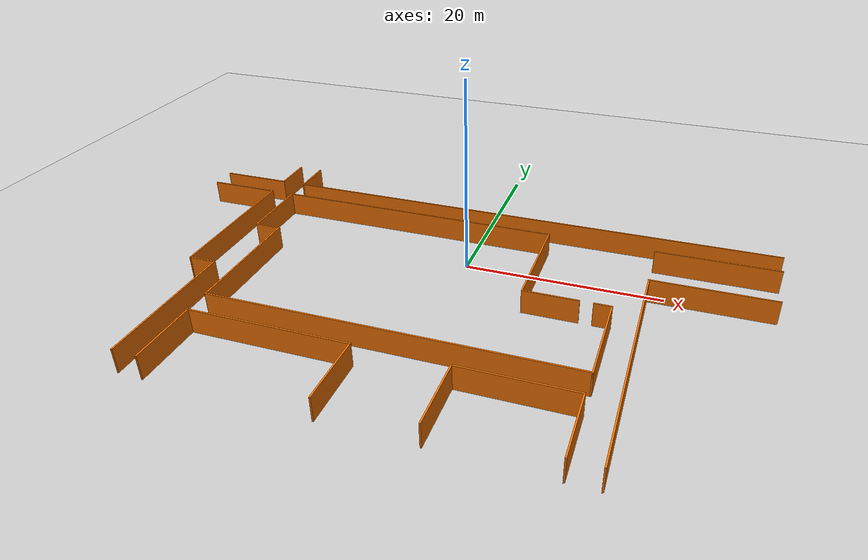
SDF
<sdf version="1.7">
 <world name="default">
  <light name="sun" type="directional">
   <pose>0 0 10 0 -0 0</pose>
   <diffuse>0.8 0.8 0.8 1</diffuse>
   <specular>0.2 0.2 0.2 1</specular>
   <attenuation>
    <range>1000</range>
    <constant>0.9</constant>
    <linear>0.01</linear>
    <quadratic>0.001</quadratic>
   </attenuation>
   <direction>-0.5 0.1 -0.9</direction>
   <spot><inner_angle>0</inner_angle><outer_angle>0</outer_angle><falloff>0</falloff></spot>
  </light>
  <model name="ground_plane">
   <static>1</static>
   <link name="link">
    <collision name="collision">
     <geometry><plane><normal>0 0 1</normal><size>100 100</size></plane></geometry>
     <surface><friction><ode><mu>100</mu><mu2>50</mu2></ode></friction></surface>
    </collision>
    <visual name="visual">
     <cast_shadows>0</cast_shadows>
     <geometry><plane><normal>0 0 1</normal><size>100 100</size></plane></geometry>
     <material>
      <script><uri>file://media/materials/scripts/gazebo.material</uri><name>Gazebo/Grey</name></script>
     </material>
    </visual>
   </link>
  </model>
  <gravity>0 0 -9.8</gravity>
  <magnetic_field>6e-06 2.3e-05 -4.2e-05</magnetic_field>
  <atmosphere type="adiabatic"/>
  <physics type="ode">
   <max_step_size>0.001</max_step_size>
   <real_time_factor>1</real_time_factor>
   <real_time_update_rate>1000</real_time_update_rate>
  </physics>
  <scene><ambient>0.4 0.4 0.4 1</ambient><background>0.7 0.7 0.7 1</background><shadows>1</shadows></scene>
  <audio><device>default</device></audio>
  <spherical_coordinates>
   <surface_model>EARTH_WGS84</surface_model>
   <latitude_deg>0</latitude_deg>
   <longitude_deg>0</longitude_deg>
   <elevation>0</elevation>
   <heading_deg>0</heading_deg>
  </spherical_coordinates>
  <model name="shiyanlou">
   <pose>-1.0655 -6.68339 0 0 -0 0</pose>
   <link name="Wall_110">
    <collision name="Wall_110_Collision">
     <geometry><box><size>12.25 0.15 2.5</size></box></geometry>
     <pose>0 0 1.25 0 -0 0</pose>
    </collision>
    <visual name="Wall_110_Visual">
     <pose>0 0 1.25 0 -0 0</pose>
     <geometry><box><size>12.25 0.15 2.5</size></box></geometry>
     <material>
      <script><uri>file://media/materials/scripts/gazebo.material</uri><name>Gazebo/Grey</name></script>
      <ambient>0.996078 0.47451 0.0196078 1</ambient>
     </material>
     <meta><layer>0</layer></meta>
    </visual>
    <pose>25.5025 11.4924 0 0 -0 0</pose>
   </link>
   <link name="Wall_116">
    <collision name="Wall_116_Collision">
     <geometry><box><size>24.5 0.15 2.5</size></box></geometry>
     <pose>0 0 1.25 0 -0 0</pose>
    </collision>
    <visual name="Wall_116_Visual">
     <pose>0 0 1.25 0 -0 0</pose>
     <geometry><box><size>24.5 0.15 2.5</size></box></geometry>
     <material>
      <script><uri>file://media/materials/scripts/gazebo.material</uri><name>Gazebo/Grey</name></script>
      <ambient>0.996078 0.47451 0.0196078 1</ambient>
     </material>
     <meta><layer>0</layer></meta>
    </visual>
    <pose>19.4525 -6.11061 0 0 -0 1.5708</pose>
   </link>
   <link name="Wall_118">
    <collision name="Wall_118_Collision">
     <geometry><box><size>12 0.15 2.5</size></box></geometry>
     <pose>0 0 1.25 0 -0 0</pose>
    </collision>
    <visual name="Wall_118_Visual">
     <pose>0 0 1.25 0 -0 0</pose>
     <geometry><box><size>12 0.15 2.5</size></box></geometry>
     <material>
      <script><uri>file://media/materials/scripts/gazebo.material</uri><name>Gazebo/Grey</name></script>
      <ambient>0.996078 0.47451 0.0196078 1</ambient>
     </material>
     <meta><layer>0</layer></meta>
    </visual>
    <pose>25.3775 6.06439 0 0 -0 0</pose>
   </link>
   <link name="Wall_122">
    <collision name="Wall_122_Collision">
     <geometry><box><size>7 0.15 2.5</size></box></geometry>
     <pose>0 0 1.25 0 -0 0</pose>
    </collision>
    <visual name="Wall_122_Visual">
     <pose>0 0 1.25 0 -0 0</pose>
     <geometry><box><size>7 0.15 2.5</size></box></geometry>
     <material>
      <script><uri>file://media/materials/scripts/gazebo.material</uri><name>Gazebo/Grey</name></script>
      <ambient>0.996078 0.47451 0.0196078 1</ambient>
     </material>
     <meta><layer>0</layer></meta>
    </visual>
    <pose>5.8315 -14.8316 0 0 -0 -1.5708</pose>
   </link>
   <link name="Wall_126">
    <collision name="Wall_126_Collision">
     <geometry><box><size>11 0.15 2.5</size></box></geometry>
     <pose>0 0 1.25 0 -0 0</pose>
    </collision>
    <visual name="Wall_126_Visual">
     <pose>0 0 1.25 0 -0 0</pose>
     <geometry><box><size>11 0.15 2.5</size></box></geometry>
     <material>
      <script><uri>file://media/materials/scripts/gazebo.material</uri><name>Gazebo/Grey</name></script>
      <ambient>0.996078 0.47451 0.0196078 1</ambient>
     </material>
     <meta><layer>0</layer></meta>
    </visual>
    <pose>11.2565 -11.4066 0 0 -0 0</pose>
   </link>
   <link name="Wall_130">
    <collision name="Wall_130_Collision">
     <geometry><box><size>7 0.15 2.5</size></box></geometry>
     <pose>0 0 1.25 0 -0 0</pose>
    </collision>
    <visual name="Wall_130_Visual">
     <pose>0 0 1.25 0 -0 0</pose>
     <geometry><box><size>7 0.15 2.5</size></box></geometry>
     <material>
      <script><uri>file://media/materials/scripts/gazebo.material</uri><name>Gazebo/Grey</name></script>
      <ambient>0.996078 0.47451 0.0196078 1</ambient>
     </material>
     <meta><layer>0</layer></meta>
    </visual>
    <pose>16.6815 -14.8316 0 0 -0 -1.5708</pose>
   </link>
   <link name="Wall_19">
    <collision name="Wall_19_Collision">
     <geometry><box><size>15.5 0.15 2.5</size></box></geometry>
     <pose>0 0 1.25 0 -0 0</pose>
    </collision>
    <visual name="Wall_19_Visual">
     <pose>0 0 1.25 0 -0 0</pose>
     <geometry><box><size>15.5 0.15 2.5</size></box></geometry>
     <material>
      <script><uri>file://media/materials/scripts/gazebo.material</uri><name>Gazebo/Grey</name></script>
      <ambient>0.996078 0.47451 0.0196078 1</ambient>
     </material>
     <meta><layer>0</layer></meta>
    </visual>
    <pose>-24.3105 3.88939 0 0 -0 -1.5708</pose>
   </link>
   <link name="Wall_26">
    <collision name="Wall_26_Collision">
     <geometry><box><size>4.25 0.15 2.5</size></box></geometry>
     <pose>0 0 1.25 0 -0 0</pose>
    </collision>
    <visual name="Wall_26_Visual">
     <pose>0 0 1.25 0 -0 0</pose>
     <geometry><box><size>4.25 0.15 2.5</size></box></geometry>
     <material>
      <script><uri>file://media/materials/scripts/gazebo.material</uri><name>Gazebo/Grey</name></script>
      <ambient>0.996078 0.47451 0.0196078 1</ambient>
     </material>
     <meta><layer>0</layer></meta>
    </visual>
    <pose>-24.3105 16.2354 0 0 -0 1.5708</pose>
   </link>
   <link name="Wall_31">
    <collision name="Wall_31_Collision">
     <geometry><box><size>4.25044 0.15 2.5</size></box></geometry>
     <pose>0 0 1.25 0 -0 0</pose>
    </collision>
    <visual name="Wall_31_Visual">
     <pose>0 0 1.25 0 -0 0</pose>
     <geometry><box><size>4.25044 0.15 2.5</size></box></geometry>
     <material>
      <script><uri>file://media/materials/scripts/gazebo.material</uri><name>Gazebo/Grey</name></script>
      <ambient>0.996078 0.47451 0.0196078 1</ambient>
     </material>
     <meta><layer>0</layer></meta>
    </visual>
    <pose>-21.6895 16.2354 0 0 -0 -1.5708</pose>
   </link>
   <link name="Wall_33">
    <collision name="Wall_33_Collision">
     <geometry><box><size>7.5 0.15 2.5</size></box></geometry>
     <pose>0 0 1.25 0 -0 0</pose>
    </collision>
    <visual name="Wall_33_Visual">
     <pose>0 0 1.25 0 -0 0</pose>
     <geometry><box><size>7.5 0.15 2.5</size></box></geometry>
     <material>
      <script><uri>file://media/materials/scripts/gazebo.material</uri><name>Gazebo/Grey</name></script>
      <ambient>0.996078 0.47451 0.0196078 1</ambient>
     </material>
     <meta><layer>0</layer></meta>
    </visual>
    <pose>-27.9855 14.1854 0 0 -0 3.14159</pose>
   </link>
   <link name="Wall_35">
    <collision name="Wall_35_Collision">
     <geometry><box><size>7.5 0.15 2.5</size></box></geometry>
     <pose>0 0 1.25 0 -0 0</pose>
    </collision>
    <visual name="Wall_35_Visual">
     <pose>0 0 1.25 0 -0 0</pose>
     <geometry><box><size>7.5 0.15 2.5</size></box></geometry>
     <material>
      <script><uri>file://media/materials/scripts/gazebo.material</uri><name>Gazebo/Grey</name></script>
      <ambient>0.996078 0.47451 0.0196078 1</ambient>
     </material>
     <meta><layer>0</layer></meta>
    </visual>
    <pose>-27.9855 11.5644 0 0 -0 3.14159</pose>
   </link>
   <link name="Wall_38">
    <collision name="Wall_38_Collision">
     <geometry><box><size>2.75 0.15 2.5</size></box></geometry>
     <pose>0 0 1.25 0 -0 0</pose>
    </collision>
    <visual name="Wall_38_Visual">
     <pose>0 0 1.25 0 -0 0</pose>
     <geometry><box><size>2.75 0.15 2.5</size></box></geometry>
     <material>
      <script><uri>file://media/materials/scripts/gazebo.material</uri><name>Gazebo/Grey</name></script>
      <ambient>0.996078 0.47451 0.0196078 1</ambient>
     </material>
     <meta><layer>0</layer></meta>
    </visual>
    <pose>-20.3685 4.16439 0 0 -0 0</pose>
   </link>
   <link name="Wall_42">
    <collision name="Wall_42_Collision">
     <geometry><box><size>2.878 0.15 2.5</size></box></geometry>
     <pose>0 0 1.25 0 -0 0</pose>
    </collision>
    <visual name="Wall_42_Visual">
     <pose>0 0 1.25 0 -0 0</pose>
     <geometry><box><size>2.878 0.15 2.5</size></box></geometry>
     <material>
      <script><uri>file://media/materials/scripts/gazebo.material</uri><name>Gazebo/Grey</name></script>
      <ambient>0.996078 0.47451 0.0196078 1</ambient>
     </material>
     <meta><layer>0</layer></meta>
    </visual>
    <pose>-22.9465 -3.78561 0 0 -0 0</pose>
   </link>
   <link name="Wall_44">
    <collision name="Wall_44_Collision">
     <geometry><box><size>13.1 0.15 2.5</size></box></geometry>
     <pose>0 0 1.25 0 -0 0</pose>
    </collision>
    <visual name="Wall_44_Visual">
     <pose>0 0 1.25 0 -0 0</pose>
     <geometry><box><size>13.1 0.15 2.5</size></box></geometry>
     <material>
      <script><uri>file://media/materials/scripts/gazebo.material</uri><name>Gazebo/Grey</name></script>
      <ambient>0.996078 0.47451 0.0196078 1</ambient>
     </material>
     <meta><layer>0</layer></meta>
    </visual>
    <pose>-19.0685 -2.31061 0 0 -0 -1.5708</pose>
   </link>
   <link name="Wall_48">
    <collision name="Wall_48_Collision">
     <geometry><box><size>36.05 0.15 2.5</size></box></geometry>
     <pose>0 0 1.25 0 -0 0</pose>
    </collision>
    <visual name="Wall_48_Visual">
     <pose>0 0 1.25 0 -0 0</pose>
     <geometry><box><size>36.05 0.15 2.5</size></box></geometry>
     <material>
      <script><uri>file://media/materials/scripts/gazebo.material</uri><name>Gazebo/Grey</name></script>
      <ambient>0.996078 0.47451 0.0196078 1</ambient>
     </material>
     <meta><layer>0</layer></meta>
    </visual>
    <pose>-1.1185 -8.78561 0 0 -0 0</pose>
   </link>
   <link name="Wall_5">
    <collision name="Wall_5_Collision">
     <geometry><box><size>53.5 0.15 2.5</size></box></geometry>
     <pose>0 0 1.25 0 -0 0</pose>
    </collision>
    <visual name="Wall_5_Visual">
     <pose>0 0 1.25 0 -0 0</pose>
     <geometry><box><size>53.5 0.15 2.5</size></box></geometry>
     <material>
      <script><uri>file://media/materials/scripts/gazebo.material</uri><name>Gazebo/Grey</name></script>
      <ambient>0.996078 0.47451 0.0196078 1</ambient>
     </material>
     <meta><layer>0</layer></meta>
    </visual>
    <pose>4.9855 14.1854 0 0 -0 0</pose>
   </link>
   <link name="Wall_52">
    <collision name="Wall_52_Collision">
     <geometry><box><size>16.05 0.15 2.5</size></box></geometry>
     <pose>0 0 1.25 0 -0 0</pose>
    </collision>
    <visual name="Wall_52_Visual">
     <pose>0 0 1.25 0 -0 0</pose>
     <geometry><box><size>16.05 0.15 2.5</size></box></geometry>
     <material>
      <script><uri>file://media/materials/scripts/gazebo.material</uri><name>Gazebo/Grey</name></script>
      <ambient>0.996078 0.47451 0.0196078 1</ambient>
     </material>
     <meta><layer>0</layer></meta>
    </visual>
    <pose>-11.1185 -11.4066 0 0 -0 0</pose>
   </link>
   <link name="Wall_54">
    <collision name="Wall_54_Collision">
     <geometry><box><size>7 0.15 2.5</size></box></geometry>
     <pose>0 0 1.25 0 -0 0</pose>
    </collision>
    <visual name="Wall_54_Visual">
     <pose>0 0 1.25 0 -0 0</pose>
     <geometry><box><size>7 0.15 2.5</size></box></geometry>
     <material>
      <script><uri>file://media/materials/scripts/gazebo.material</uri><name>Gazebo/Grey</name></script>
      <ambient>0.996078 0.47451 0.0196078 1</ambient>
     </material>
     <meta><layer>0</layer></meta>
    </visual>
    <pose>-19.0685 -14.8316 0 0 -0 -1.5708</pose>
   </link>
   <link name="Wall_60">
    <collision name="Wall_60_Collision">
     <geometry><box><size>14.5 0.15 2.5</size></box></geometry>
     <pose>0 0 1.25 0 -0 0</pose>
    </collision>
    <visual name="Wall_60_Visual">
     <pose>0 0 1.25 0 -0 0</pose>
     <geometry><box><size>14.5 0.15 2.5</size></box></geometry>
     <material>
      <script><uri>file://media/materials/scripts/gazebo.material</uri><name>Gazebo/Grey</name></script>
      <ambient>0.996078 0.47451 0.0196078 1</ambient>
     </material>
     <meta><layer>0</layer></meta>
    </visual>
    <pose>-21.5825 -10.9606 0 0 -0 -1.5708</pose>
   </link>
   <link name="Wall_62">
    <collision name="Wall_62_Collision">
     <geometry><box><size>7 0.15 2.5</size></box></geometry>
     <pose>0 0 1.25 0 -0 0</pose>
    </collision>
    <visual name="Wall_62_Visual">
     <pose>0 0 1.25 0 -0 0</pose>
     <geometry><box><size>7 0.15 2.5</size></box></geometry>
     <material>
      <script><uri>file://media/materials/scripts/gazebo.material</uri><name>Gazebo/Grey</name></script>
      <ambient>0.996078 0.47451 0.0196078 1</ambient>
     </material>
     <meta><layer>0</layer></meta>
    </visual>
    <pose>-3.1685 -14.8316 0 0 -0 -1.5708</pose>
   </link>
   <link name="Wall_70">
    <collision name="Wall_70_Collision">
     <geometry><box><size>9.6 0.15 2.5</size></box></geometry>
     <pose>0 0 1.25 0 -0 0</pose>
    </collision>
    <visual name="Wall_70_Visual">
     <pose>0 0 1.25 0 -0 0</pose>
     <geometry><box><size>9.6 0.15 2.5</size></box></geometry>
     <material>
      <script><uri>file://media/materials/scripts/gazebo.material</uri><name>Gazebo/Grey</name></script>
      <ambient>0.996078 0.47451 0.0196078 1</ambient>
     </material>
     <meta><layer>0</layer></meta>
    </visual>
    <pose>16.8315 -4.06061 0 0 -0 1.5708</pose>
   </link>
   <link name="Wall_72">
    <collision name="Wall_72_Collision">
     <geometry><box><size>1.75 0.15 2.5</size></box></geometry>
     <pose>0 0 1.25 0 -0 0</pose>
    </collision>
    <visual name="Wall_72_Visual">
     <pose>0 0 1.25 0 -0 0</pose>
     <geometry><box><size>1.75 0.15 2.5</size></box></geometry>
     <material>
      <script><uri>file://media/materials/scripts/gazebo.material</uri><name>Gazebo/Grey</name></script>
      <ambient>0.996078 0.47451 0.0196078 1</ambient>
     </material>
     <meta><layer>0</layer></meta>
    </visual>
    <pose>16.0315 0.66439 0 0 -0 3.14159</pose>
   </link>
   <link name="Wall_81">
    <collision name="Wall_81_Collision">
     <geometry><box><size>5.5 0.15 2.5</size></box></geometry>
     <pose>0 0 1.25 0 -0 0</pose>
    </collision>
    <visual name="Wall_81_Visual">
     <pose>0 0 1.25 0 -0 0</pose>
     <geometry><box><size>5.5 0.15 2.5</size></box></geometry>
     <material>
      <script><uri>file://media/materials/scripts/gazebo.material</uri><name>Gazebo/Grey</name></script>
      <ambient>0.996078 0.47451 0.0196078 1</ambient>
     </material>
     <meta><layer>0</layer></meta>
    </visual>
    <pose>11.1665 0.66439 0 0 -0 3.14159</pose>
   </link>
   <link name="Wall_83">
    <collision name="Wall_83_Collision">
     <geometry><box><size>11 0.15 2.5</size></box></geometry>
     <pose>0 0 1.25 0 -0 0</pose>
    </collision>
    <visual name="Wall_83_Visual">
     <pose>0 0 1.25 0 -0 0</pose>
     <geometry><box><size>11 0.15 2.5</size></box></geometry>
     <material>
      <script><uri>file://media/materials/scripts/gazebo.material</uri><name>Gazebo/Grey</name></script>
      <ambient>0.996078 0.47451 0.0196078 1</ambient>
     </material>
     <meta><layer>0</layer></meta>
    </visual>
    <pose>8.4825 6.13939 0 0 -0 -1.5708</pose>
   </link>
   <link name="Wall_87">
    <collision name="Wall_87_Collision">
     <geometry><box><size>7.50011 0.15 2.5</size></box></geometry>
     <pose>0 0 1.25 0 -0 0</pose>
    </collision>
    <visual name="Wall_87_Visual">
     <pose>0 0 1.25 0 -0 0</pose>
     <geometry><box><size>7.50011 0.15 2.5</size></box></geometry>
     <material>
      <script><uri>file://media/materials/scripts/gazebo.material</uri><name>Gazebo/Grey</name></script>
      <ambient>0.996078 0.47451 0.0196078 1</ambient>
     </material>
     <meta><layer>0</layer></meta>
    </visual>
    <pose>-21.6895 7.88939 0 0 -0 -1.5708</pose>
   </link>
   <link name="Wall_91">
    <collision name="Wall_91_Collision">
     <geometry><box><size>30.2965 0.15 2.5</size></box></geometry>
     <pose>0 0 1.25 0 -0 0</pose>
    </collision>
    <visual name="Wall_91_Visual">
     <pose>0 0 1.25 0 -0 0</pose>
     <geometry><box><size>30.2965 0.15 2.5</size></box></geometry>
     <material>
      <script><uri>file://media/materials/scripts/gazebo.material</uri><name>Gazebo/Grey</name></script>
      <ambient>0.996078 0.47451 0.0196078 1</ambient>
     </material>
     <meta><layer>0</layer></meta>
    </visual>
    <pose>-6.61624 11.5644 0 0 -0 0</pose>
   </link>
   <static>1</static>
  </model>
 </world>
</sdf>
